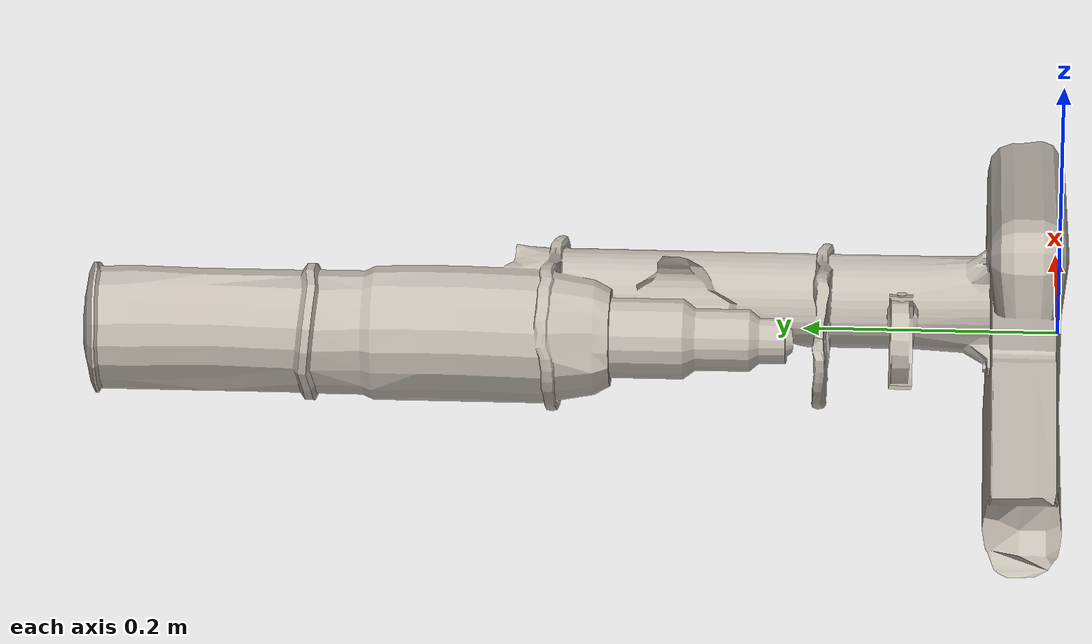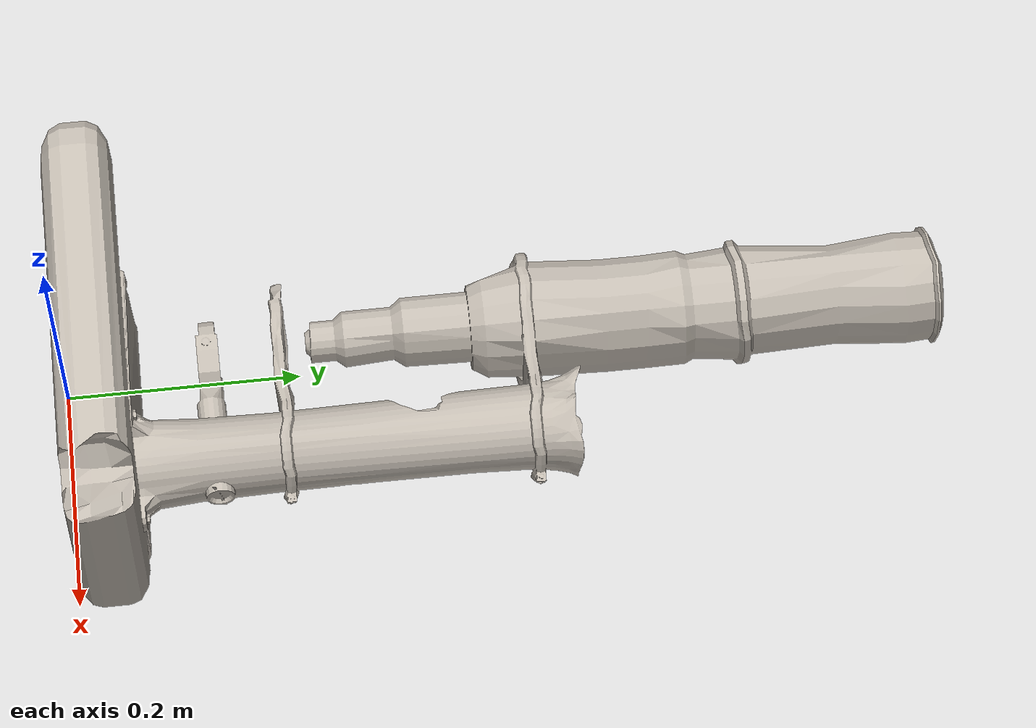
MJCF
<mujoco model="c7ab97fb91b14e7f9a539ef9a62d4fbb">
  <default>
    <default class="visual">
      <geom group="2" type="mesh" contype="0" conaffinity="0"/>
    </default>
    <default class="collision">
      <geom group="3" type="mesh"/>
    </default>
  </default>
  <asset>
    <texture type="2d" name="material_0" file="material_0.png"/>
    <material name="material_0" texture="material_0" specular="0.4000000000000001" shininess="0.001"/>
    <mesh file="c7ab97fb91b14e7f9a539ef9a62d4fbb.obj"/>
    <mesh file="c7ab97fb91b14e7f9a539ef9a62d4fbb_collision_0.obj"/>
    <mesh file="c7ab97fb91b14e7f9a539ef9a62d4fbb_collision_1.obj"/>
    <mesh file="c7ab97fb91b14e7f9a539ef9a62d4fbb_collision_2.obj"/>
    <mesh file="c7ab97fb91b14e7f9a539ef9a62d4fbb_collision_3.obj"/>
    <mesh file="c7ab97fb91b14e7f9a539ef9a62d4fbb_collision_4.obj"/>
    <mesh file="c7ab97fb91b14e7f9a539ef9a62d4fbb_collision_5.obj"/>
    <mesh file="c7ab97fb91b14e7f9a539ef9a62d4fbb_collision_6.obj"/>
    <mesh file="c7ab97fb91b14e7f9a539ef9a62d4fbb_collision_7.obj"/>
    <mesh file="c7ab97fb91b14e7f9a539ef9a62d4fbb_collision_8.obj"/>
    <mesh file="c7ab97fb91b14e7f9a539ef9a62d4fbb_collision_9.obj"/>
    <mesh file="c7ab97fb91b14e7f9a539ef9a62d4fbb_collision_10.obj"/>
    <mesh file="c7ab97fb91b14e7f9a539ef9a62d4fbb_collision_11.obj"/>
    <mesh file="c7ab97fb91b14e7f9a539ef9a62d4fbb_collision_12.obj"/>
    <mesh file="c7ab97fb91b14e7f9a539ef9a62d4fbb_collision_13.obj"/>
    <mesh file="c7ab97fb91b14e7f9a539ef9a62d4fbb_collision_14.obj"/>
    <mesh file="c7ab97fb91b14e7f9a539ef9a62d4fbb_collision_15.obj"/>
    <mesh file="c7ab97fb91b14e7f9a539ef9a62d4fbb_collision_16.obj"/>
    <mesh file="c7ab97fb91b14e7f9a539ef9a62d4fbb_collision_17.obj"/>
    <mesh file="c7ab97fb91b14e7f9a539ef9a62d4fbb_collision_18.obj"/>
    <mesh file="c7ab97fb91b14e7f9a539ef9a62d4fbb_collision_19.obj"/>
    <mesh file="c7ab97fb91b14e7f9a539ef9a62d4fbb_collision_20.obj"/>
    <mesh file="c7ab97fb91b14e7f9a539ef9a62d4fbb_collision_21.obj"/>
    <mesh file="c7ab97fb91b14e7f9a539ef9a62d4fbb_collision_22.obj"/>
    <mesh file="c7ab97fb91b14e7f9a539ef9a62d4fbb_collision_23.obj"/>
    <mesh file="c7ab97fb91b14e7f9a539ef9a62d4fbb_collision_24.obj"/>
    <mesh file="c7ab97fb91b14e7f9a539ef9a62d4fbb_collision_25.obj"/>
    <mesh file="c7ab97fb91b14e7f9a539ef9a62d4fbb_collision_26.obj"/>
    <mesh file="c7ab97fb91b14e7f9a539ef9a62d4fbb_collision_27.obj"/>
    <mesh file="c7ab97fb91b14e7f9a539ef9a62d4fbb_collision_28.obj"/>
    <mesh file="c7ab97fb91b14e7f9a539ef9a62d4fbb_collision_29.obj"/>
    <mesh file="c7ab97fb91b14e7f9a539ef9a62d4fbb_collision_30.obj"/>
    <mesh file="c7ab97fb91b14e7f9a539ef9a62d4fbb_collision_31.obj"/>
    <mesh file="c7ab97fb91b14e7f9a539ef9a62d4fbb_collision_32.obj"/>
    <mesh file="c7ab97fb91b14e7f9a539ef9a62d4fbb_collision_33.obj"/>
  </asset>
  <worldbody>
    <body name="c7ab97fb91b14e7f9a539ef9a62d4fbb">
      <freejoint/>
      <geom material="material_0" mesh="c7ab97fb91b14e7f9a539ef9a62d4fbb" class="visual"/>
      <geom mesh="c7ab97fb91b14e7f9a539ef9a62d4fbb_collision_0" rgba="0.3872432066180552 0.8610403269870405 0.15903135628187814 1" class="collision"/>
      <geom mesh="c7ab97fb91b14e7f9a539ef9a62d4fbb_collision_1" rgba="0.39408792504178625 0.25277122394977425 0.8179520203919399 1" class="collision"/>
      <geom mesh="c7ab97fb91b14e7f9a539ef9a62d4fbb_collision_2" rgba="0.50701756384713 0.6630996404629159 0.39049765892443944 1" class="collision"/>
      <geom mesh="c7ab97fb91b14e7f9a539ef9a62d4fbb_collision_3" rgba="0.21448097166441127 0.47014797628049154 0.5131458840695167 1" class="collision"/>
      <geom mesh="c7ab97fb91b14e7f9a539ef9a62d4fbb_collision_4" rgba="0.6640526280140071 0.7006683977046924 0.7366535831999029 1" class="collision"/>
      <geom mesh="c7ab97fb91b14e7f9a539ef9a62d4fbb_collision_5" rgba="0.8657303243977628 0.5967731766795993 0.011618848130999115 1" class="collision"/>
      <geom mesh="c7ab97fb91b14e7f9a539ef9a62d4fbb_collision_6" rgba="0.19540636414507007 0.24926915430749808 0.7467122612445596 1" class="collision"/>
      <geom mesh="c7ab97fb91b14e7f9a539ef9a62d4fbb_collision_7" rgba="0.7357553813866807 0.014054704499393278 0.9106766664180339 1" class="collision"/>
      <geom mesh="c7ab97fb91b14e7f9a539ef9a62d4fbb_collision_8" rgba="0.9844758427912855 0.3376018505082351 0.9929054892384456 1" class="collision"/>
      <geom mesh="c7ab97fb91b14e7f9a539ef9a62d4fbb_collision_9" rgba="0.8060391839264455 0.027158229537389 0.5162951351990901 1" class="collision"/>
      <geom mesh="c7ab97fb91b14e7f9a539ef9a62d4fbb_collision_10" rgba="0.4297443604581589 0.9148105658402205 0.26772836844001546 1" class="collision"/>
      <geom mesh="c7ab97fb91b14e7f9a539ef9a62d4fbb_collision_11" rgba="0.39288398574648586 0.4644138435910168 0.9149453507285044 1" class="collision"/>
      <geom mesh="c7ab97fb91b14e7f9a539ef9a62d4fbb_collision_12" rgba="0.9003837166052875 0.0581324968418504 0.07026389909244912 1" class="collision"/>
      <geom mesh="c7ab97fb91b14e7f9a539ef9a62d4fbb_collision_13" rgba="0.6901385360063369 0.5586006892095577 0.2604960089792969 1" class="collision"/>
      <geom mesh="c7ab97fb91b14e7f9a539ef9a62d4fbb_collision_14" rgba="0.8849055718513595 0.9005419454504733 0.7100197579608015 1" class="collision"/>
      <geom mesh="c7ab97fb91b14e7f9a539ef9a62d4fbb_collision_15" rgba="0.5738174614496 0.13344580777588433 0.5811765427217116 1" class="collision"/>
      <geom mesh="c7ab97fb91b14e7f9a539ef9a62d4fbb_collision_16" rgba="0.612941717710326 0.3999959493779712 0.8924571948541258 1" class="collision"/>
      <geom mesh="c7ab97fb91b14e7f9a539ef9a62d4fbb_collision_17" rgba="0.7038913012251171 0.5778087125936266 0.5797582690876005 1" class="collision"/>
      <geom mesh="c7ab97fb91b14e7f9a539ef9a62d4fbb_collision_18" rgba="0.19202890520159654 0.5505435878641829 0.4137987237427041 1" class="collision"/>
      <geom mesh="c7ab97fb91b14e7f9a539ef9a62d4fbb_collision_19" rgba="0.26436803492028416 0.7169794716834939 0.7392922633502317 1" class="collision"/>
      <geom mesh="c7ab97fb91b14e7f9a539ef9a62d4fbb_collision_20" rgba="0.9009150430124077 0.2365187156163585 0.585479089400506 1" class="collision"/>
      <geom mesh="c7ab97fb91b14e7f9a539ef9a62d4fbb_collision_21" rgba="0.34202979250569454 0.13572249536114944 0.908162591084698 1" class="collision"/>
      <geom mesh="c7ab97fb91b14e7f9a539ef9a62d4fbb_collision_22" rgba="0.8341025623858509 0.11133078705271415 0.14686226765977872 1" class="collision"/>
      <geom mesh="c7ab97fb91b14e7f9a539ef9a62d4fbb_collision_23" rgba="0.7447585940889672 0.15115915482428988 0.3241407325809419 1" class="collision"/>
      <geom mesh="c7ab97fb91b14e7f9a539ef9a62d4fbb_collision_24" rgba="0.7713055918340375 0.06979845078895197 0.23509533732756638 1" class="collision"/>
      <geom mesh="c7ab97fb91b14e7f9a539ef9a62d4fbb_collision_25" rgba="0.34621568354191734 0.41769003525212023 0.3532233606715407 1" class="collision"/>
      <geom mesh="c7ab97fb91b14e7f9a539ef9a62d4fbb_collision_26" rgba="0.45011922830090667 0.26022365458993024 0.7956315346847395 1" class="collision"/>
      <geom mesh="c7ab97fb91b14e7f9a539ef9a62d4fbb_collision_27" rgba="0.8454462060626529 0.6582925564366768 0.853622986731933 1" class="collision"/>
      <geom mesh="c7ab97fb91b14e7f9a539ef9a62d4fbb_collision_28" rgba="0.8785070653341105 0.33666804811937734 0.35378762262491703 1" class="collision"/>
      <geom mesh="c7ab97fb91b14e7f9a539ef9a62d4fbb_collision_29" rgba="0.1725915252690341 0.025396288492820385 0.7381436694056114 1" class="collision"/>
      <geom mesh="c7ab97fb91b14e7f9a539ef9a62d4fbb_collision_30" rgba="0.1692648127817976 0.8602863948314771 0.4734472639641868 1" class="collision"/>
      <geom mesh="c7ab97fb91b14e7f9a539ef9a62d4fbb_collision_31" rgba="0.0625277833961565 0.6664802751768543 0.5457172417850359 1" class="collision"/>
      <geom mesh="c7ab97fb91b14e7f9a539ef9a62d4fbb_collision_32" rgba="0.23137448062919808 0.6654617817906088 0.7499130749061015 1" class="collision"/>
      <geom mesh="c7ab97fb91b14e7f9a539ef9a62d4fbb_collision_33" rgba="0.794972926459523 0.21059325767822734 0.7506362177561046 1" class="collision"/>
    </body>
  </worldbody>
</mujoco>
